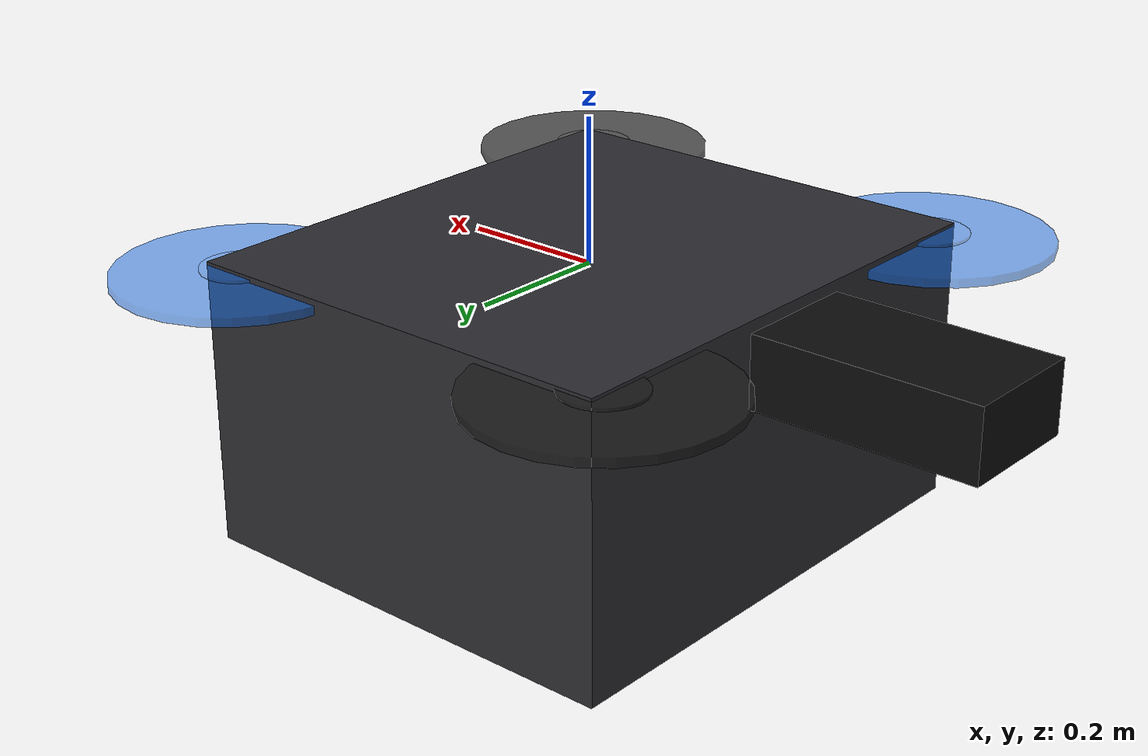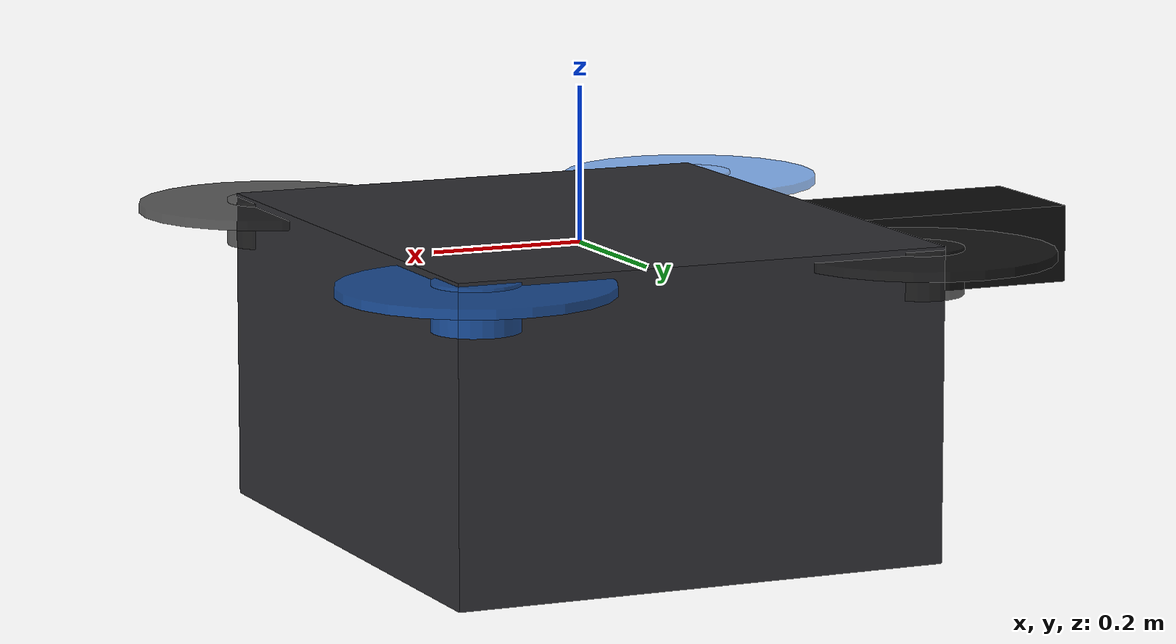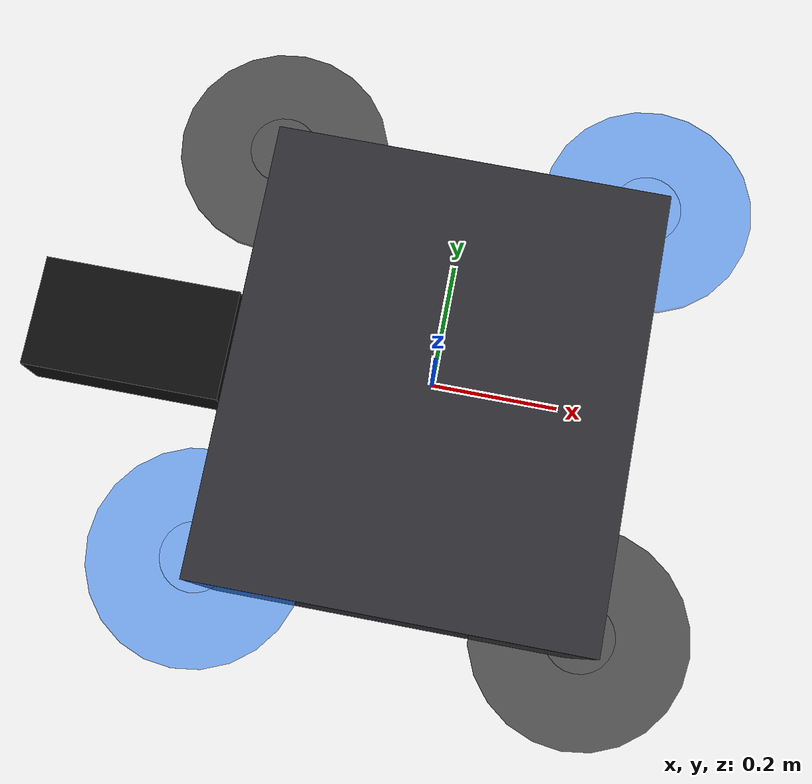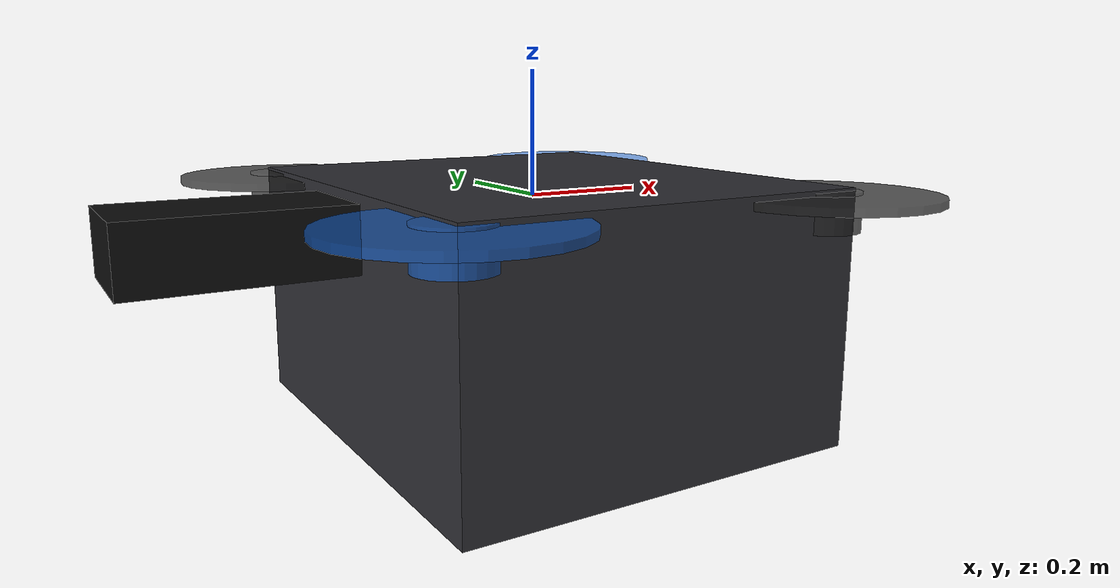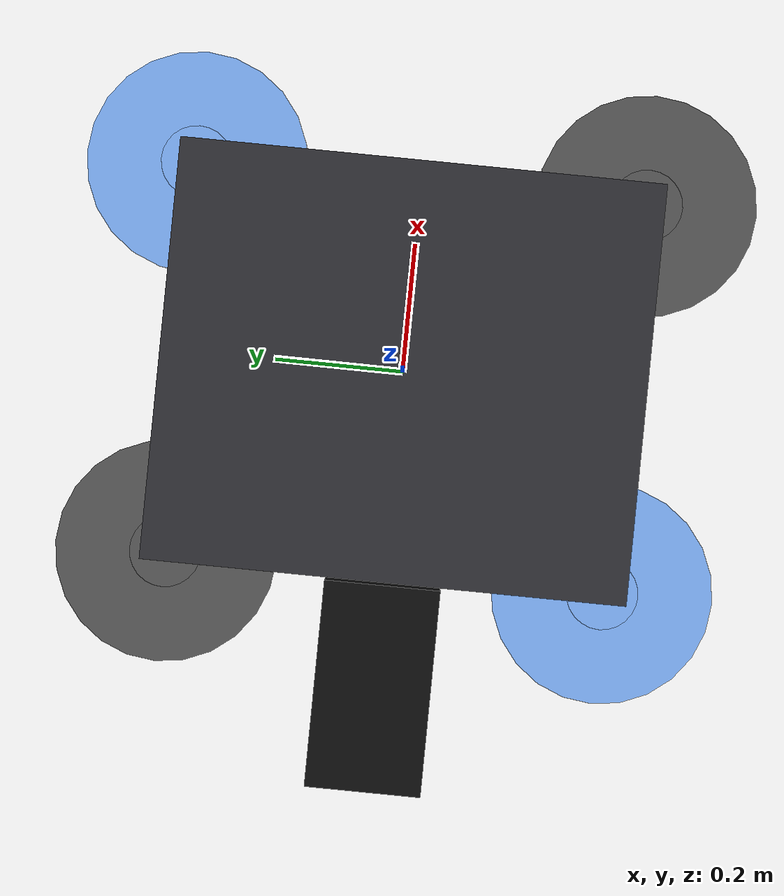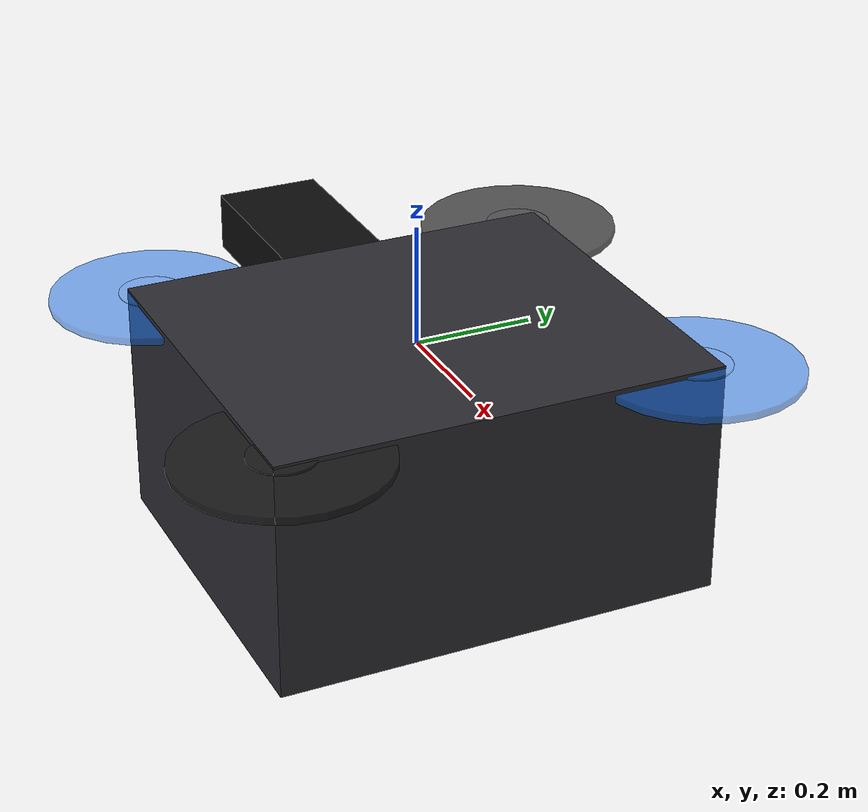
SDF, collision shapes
<?xml version='1.0' encoding='utf-8'?>
<sdf version="1.9">
  <model name="swan_uav">
    <self_collide>true</self_collide>
    <link name="base_link">
      <inertial>
        <pose>0 0 0 0 -0 0</pose>
        <mass>4.0518</mass>
        <inertia>
          <ixx>0.1105</ixx>
          <ixy>0</ixy>
          <ixz>0</ixz>
          <iyy>0.1482</iyy>
          <iyz>0</iyz>
          <izz>0.2024</izz>
        </inertia>
      </inertial>
      <!-- Collision box: covers body + landing gear feet (Z: -0.355 ~ +0.025) -->
      <collision name="base_link_collision">
        <pose>0 0 -0.17 0 0 0</pose>
        <geometry>
          <box>
            <size>0.65 0.75 0.40</size>
          </box>
        </geometry>
        <surface>
          <contact>
            <ode>
              <min_depth>0.005</min_depth>
              <max_vel>0</max_vel>
            </ode>
          </contact>
          <friction>
            <ode />
          </friction>
        </surface>
      </collision>
      <visual name="base_link_visual">
        <pose>0 0 0 0 -0 0</pose>
        <geometry>
          <mesh>
            <scale>1 1 1</scale>
            <uri>model://swan_uav/meshes/base_link.STL</uri>
          </mesh>
        </geometry>
        <material>
          <ambient>0.18 0.18 0.2 1</ambient>
          <diffuse>0.18 0.18 0.2 1</diffuse>
          <specular>0.05 0.05 0.05 1</specular>
          <emissive>0 0 0 1</emissive>
        </material>
      </visual>
      <!-- Sensors on base_link for PX4 gz_bridge compatibility -->
      <sensor name="air_pressure_sensor" type="air_pressure">
        <always_on>true</always_on>
        <update_rate>50</update_rate>
        <air_pressure>
          <pressure>
            <noise type="gaussian">
              <mean>0</mean>
              <stddev>0.01</stddev>
            </noise>
          </pressure>
        </air_pressure>
      </sensor>
      <sensor name="magnetometer_sensor" type="magnetometer">
        <always_on>true</always_on>
        <update_rate>100</update_rate>
        <magnetometer>
          <x><noise type="gaussian"><stddev>0.0001</stddev></noise></x>
          <y><noise type="gaussian"><stddev>0.0001</stddev></noise></y>
          <z><noise type="gaussian"><stddev>0.0001</stddev></noise></z>
        </magnetometer>
      </sensor>
      <sensor name="imu_sensor" type="imu">
        <always_on>true</always_on>
        <update_rate>250</update_rate>
        <imu>
          <angular_velocity>
            <x><noise type="gaussian"><mean>0</mean><stddev>0.0008726646</stddev></noise></x>
            <y><noise type="gaussian"><mean>0</mean><stddev>0.0008726646</stddev></noise></y>
            <z><noise type="gaussian"><mean>0</mean><stddev>0.0008726646</stddev></noise></z>
          </angular_velocity>
          <linear_acceleration>
            <x><noise type="gaussian"><mean>0</mean><stddev>0.00637</stddev></noise></x>
            <y><noise type="gaussian"><mean>0</mean><stddev>0.00637</stddev></noise></y>
            <z><noise type="gaussian"><mean>0</mean><stddev>0.00686</stddev></noise></z>
          </linear_acceleration>
        </imu>
      </sensor>
      <sensor name="navsat_sensor" type="navsat">
        <always_on>true</always_on>
        <update_rate>30</update_rate>
      </sensor>
    </link>

    <!-- Battery -->
    <joint name="bat_joint" type="fixed">
      <pose relative_to="base_link">-0.49118 -2.1e-05 -0.031987 0 -0 0</pose>
      <parent>base_link</parent>
      <child>bat_Link</child>
    </joint>
    <link name="bat_Link">
      <pose relative_to="bat_joint">0 0 0 0 -0 0</pose>
      <inertial>
        <pose>0 0 0 0 -0 0</pose>
        <mass>2.959</mass>
        <inertia>
          <ixx>0.00379</ixx>
          <ixy>0</ixy>
          <ixz>0</ixz>
          <iyy>0.00979</iyy>
          <iyz>0</iyz>
          <izz>0.0114</izz>
        </inertia>
      </inertial>
      <!-- Simplified collision for battery pack -->
      <collision name="bat_Link_collision">
        <pose>0 0 0 0 0 0</pose>
        <geometry>
          <box>
            <size>0.32 0.18 0.10</size>
          </box>
        </geometry>
        <max_contacts>20</max_contacts>
        <surface>
          <friction>
            <ode>
              <mu>0.8</mu>
              <mu2>0.8</mu2>
            </ode>
          </friction>
          <bounce>
            <restitution_coefficient>0.0</restitution_coefficient>
            <threshold>100000.0</threshold>
          </bounce>
          <contact>
            <ode>
              <kp>100000</kp>
              <kd>1</kd>
              <max_vel>0.01</max_vel>
              <min_depth>0.001</min_depth>
            </ode>
          </contact>
        </surface>
      </collision>
      <visual name="bat_Link_visual">
        <pose>0 0 0 0 -0 0</pose>
        <geometry>
          <mesh>
            <scale>1 1 1</scale>
            <uri>model://swan_uav/meshes/bat_Link.STL</uri>
          </mesh>
        </geometry>
        <material>
          <ambient>0.05 0.05 0.05 1</ambient>
          <diffuse>0.05 0.05 0.05 1</diffuse>
          <specular>0.05 0.05 0.05 1</specular>
          <emissive>0 0 0 1</emissive>
        </material>
      </visual>
    </link>

    <!-- Rotor 1: front-right (turningDirection: cw) -->
    <joint name="rotor_1_joint" type="revolute">
      <pose relative_to="base_link">0.29001 0.34723 0.015659 0 -0 0</pose>
      <parent>base_link</parent>
      <child>rotor_1</child>
      <axis>
        <xyz>0 0 1</xyz>
        <limit>
          <lower>-1e+16</lower>
          <upper>1e+16</upper>
        </limit>
        <dynamics>
          <spring_reference>0</spring_reference>
          <spring_stiffness>0</spring_stiffness>
        </dynamics>
      </axis>
    </joint>
    <link name="rotor_1">
      <pose relative_to="rotor_1_joint">0 0 0 0 -0 0</pose>
      <inertial>
        <pose>0.00055432 0.00024977 -0.01562 0 -0 0</pose>
        <mass>0.25</mass>
        <inertia>
          <ixx>0.000257</ixx>
          <ixy>0</ixy>
          <ixz>0</ixz>
          <iyy>0.000257</iyy>
          <iyz>0</iyz>
          <izz>0.000475</izz>
        </inertia>
      </inertial>
      <!-- Simplified collision for motor hub and propeller disk -->
      <collision name="rotor_1_motor_collision">
        <pose>0 0 -0.02 0 0 0</pose>
        <geometry>
          <cylinder>
            <radius>0.055</radius>
            <length>0.06</length>
          </cylinder>
        </geometry>
        <max_contacts>20</max_contacts>
        <surface>
          <friction>
            <ode>
              <mu>0.8</mu>
              <mu2>0.8</mu2>
            </ode>
          </friction>
          <bounce>
            <restitution_coefficient>0.0</restitution_coefficient>
            <threshold>100000.0</threshold>
          </bounce>
          <contact>
            <ode>
              <kp>100000</kp>
              <kd>1</kd>
              <max_vel>0.01</max_vel>
              <min_depth>0.001</min_depth>
            </ode>
          </contact>
        </surface>
      </collision>
      <collision name="rotor_1_prop_disk_collision">
        <pose>0 0 0 0 0 0</pose>
        <geometry>
          <cylinder>
            <radius>0.17</radius>
            <length>0.012</length>
          </cylinder>
        </geometry>
        <max_contacts>20</max_contacts>
        <surface>
          <friction>
            <ode>
              <mu>0.8</mu>
              <mu2>0.8</mu2>
            </ode>
          </friction>
          <bounce>
            <restitution_coefficient>0.0</restitution_coefficient>
            <threshold>100000.0</threshold>
          </bounce>
          <contact>
            <ode>
              <kp>100000</kp>
              <kd>1</kd>
              <max_vel>0.01</max_vel>
              <min_depth>0.001</min_depth>
            </ode>
          </contact>
        </surface>
      </collision>
      <visual name="rotor_1_visual">
        <pose>0 0 0 0 -0 0</pose>
        <geometry>
          <mesh>
            <scale>1 1 1</scale>
            <uri>model://swan_uav/meshes/rot1_Link.STL</uri>
          </mesh>
        </geometry>
        <material>
          <ambient>0.1 0.45 0.95 0.55</ambient>
          <diffuse>0.1 0.45 0.95 0.55</diffuse>
          <specular>0.05 0.05 0.05 1</specular>
          <emissive>0 0 0 1</emissive>
        </material>
        <transparency>0.45</transparency>
      </visual>
    </link>

    <!-- Rotor 2: back-left (turningDirection: cw) -->
    <joint name="rotor_2_joint" type="revolute">
      <pose relative_to="base_link">-0.30999 -0.33727 0.015659 0 -0 0</pose>
      <parent>base_link</parent>
      <child>rotor_2</child>
      <axis>
        <xyz>0 0 1</xyz>
        <limit>
          <lower>-1e+16</lower>
          <upper>1e+16</upper>
        </limit>
        <dynamics>
          <spring_reference>0</spring_reference>
          <spring_stiffness>0</spring_stiffness>
        </dynamics>
      </axis>
    </joint>
    <link name="rotor_2">
      <pose relative_to="rotor_2_joint">0 0 0 0 -0 0</pose>
      <inertial>
        <pose>0.00050774 -2.7876e-05 -0.015619 0 -0 0</pose>
        <mass>0.25</mass>
        <inertia>
          <ixx>0.000257</ixx>
          <ixy>0</ixy>
          <ixz>0</ixz>
          <iyy>0.000257</iyy>
          <iyz>0</iyz>
          <izz>0.000475</izz>
        </inertia>
      </inertial>
      <!-- Simplified collision for motor hub and propeller disk -->
      <collision name="rotor_2_motor_collision">
        <pose>0 0 -0.02 0 0 0</pose>
        <geometry>
          <cylinder>
            <radius>0.055</radius>
            <length>0.06</length>
          </cylinder>
        </geometry>
        <max_contacts>20</max_contacts>
        <surface>
          <friction>
            <ode>
              <mu>0.8</mu>
              <mu2>0.8</mu2>
            </ode>
          </friction>
          <bounce>
            <restitution_coefficient>0.0</restitution_coefficient>
            <threshold>100000.0</threshold>
          </bounce>
          <contact>
            <ode>
              <kp>100000</kp>
              <kd>1</kd>
              <max_vel>0.01</max_vel>
              <min_depth>0.001</min_depth>
            </ode>
          </contact>
        </surface>
      </collision>
      <collision name="rotor_2_prop_disk_collision">
        <pose>0 0 0 0 0 0</pose>
        <geometry>
          <cylinder>
            <radius>0.17</radius>
            <length>0.012</length>
          </cylinder>
        </geometry>
        <max_contacts>20</max_contacts>
        <surface>
          <friction>
            <ode>
              <mu>0.8</mu>
              <mu2>0.8</mu2>
            </ode>
          </friction>
          <bounce>
            <restitution_coefficient>0.0</restitution_coefficient>
            <threshold>100000.0</threshold>
          </bounce>
          <contact>
            <ode>
              <kp>100000</kp>
              <kd>1</kd>
              <max_vel>0.01</max_vel>
              <min_depth>0.001</min_depth>
            </ode>
          </contact>
        </surface>
      </collision>
      <visual name="rotor_2_visual">
        <pose>0 0 0 3.14159 -0 0</pose>
        <geometry>
          <mesh>
            <scale>1 1 1</scale>
            <uri>model://swan_uav/meshes/rot3_Link.STL</uri>
          </mesh>
        </geometry>
        <material>
          <ambient>0.1 0.45 0.95 0.55</ambient>
          <diffuse>0.1 0.45 0.95 0.55</diffuse>
          <specular>0.05 0.05 0.05 1</specular>
          <emissive>0 0 0 1</emissive>
        </material>
        <transparency>0.45</transparency>
      </visual>
    </link>

    <!-- Rotor 3: front-left (turningDirection: ccw) -->
    <joint name="rotor_3_joint" type="revolute">
      <pose relative_to="base_link">0.29001 -0.34727 0.015659 0 -0 0</pose>
      <parent>base_link</parent>
      <child>rotor_3</child>
      <axis>
        <xyz>0 0 1</xyz>
        <limit>
          <lower>-1e+16</lower>
          <upper>1e+16</upper>
        </limit>
        <dynamics>
          <spring_reference>0</spring_reference>
          <spring_stiffness>0</spring_stiffness>
        </dynamics>
      </axis>
    </joint>
    <link name="rotor_3">
      <pose relative_to="rotor_3_joint">0 0 0 0 -0 0</pose>
      <inertial>
        <pose>5.8372e-05 -0.00026068 -0.014932 0 -0 0</pose>
        <mass>0.25</mass>
        <inertia>
          <ixx>0.000257</ixx>
          <ixy>0</ixy>
          <ixz>0</ixz>
          <iyy>0.000257</iyy>
          <iyz>0</iyz>
          <izz>0.000475</izz>
        </inertia>
      </inertial>
      <!-- Simplified collision for motor hub and propeller disk -->
      <collision name="rotor_3_motor_collision">
        <pose>0 0 -0.02 0 0 0</pose>
        <geometry>
          <cylinder>
            <radius>0.055</radius>
            <length>0.06</length>
          </cylinder>
        </geometry>
        <max_contacts>20</max_contacts>
        <surface>
          <friction>
            <ode>
              <mu>0.8</mu>
              <mu2>0.8</mu2>
            </ode>
          </friction>
          <bounce>
            <restitution_coefficient>0.0</restitution_coefficient>
            <threshold>100000.0</threshold>
          </bounce>
          <contact>
            <ode>
              <kp>100000</kp>
              <kd>1</kd>
              <max_vel>0.01</max_vel>
              <min_depth>0.001</min_depth>
            </ode>
          </contact>
        </surface>
      </collision>
      <collision name="rotor_3_prop_disk_collision">
        <pose>0 0 0 0 0 0</pose>
        <geometry>
          <cylinder>
            <radius>0.17</radius>
            <length>0.012</length>
          </cylinder>
        </geometry>
        <max_contacts>20</max_contacts>
        <surface>
          <friction>
            <ode>
              <mu>0.8</mu>
              <mu2>0.8</mu2>
            </ode>
          </friction>
          <bounce>
            <restitution_coefficient>0.0</restitution_coefficient>
            <threshold>100000.0</threshold>
          </bounce>
          <contact>
            <ode>
              <kp>100000</kp>
              <kd>1</kd>
              <max_vel>0.01</max_vel>
              <min_depth>0.001</min_depth>
            </ode>
          </contact>
        </surface>
      </collision>
      <visual name="rotor_3_visual">
        <pose>0 0 0 0 -0 0</pose>
        <geometry>
          <mesh>
            <scale>1 1 1</scale>
            <uri>model://swan_uav/meshes/rot2_Link.STL</uri>
          </mesh>
        </geometry>
        <material>
          <ambient>0.15 0.15 0.15 0.75</ambient>
          <diffuse>0.15 0.15 0.15 0.75</diffuse>
          <specular>0.05 0.05 0.05 1</specular>
          <emissive>0 0 0 1</emissive>
        </material>
        <transparency>0.25</transparency>
      </visual>
    </link>

    <!-- Rotor 4: back-right (turningDirection: ccw) -->
    <joint name="rotor_4_joint" type="revolute">
      <pose relative_to="base_link">-0.30999 0.33723 0.015659 0 -0 0</pose>
      <parent>base_link</parent>
      <child>rotor_4</child>
      <axis>
        <xyz>0 0 1</xyz>
        <limit>
          <lower>-1e+16</lower>
          <upper>1e+16</upper>
        </limit>
        <dynamics>
          <spring_reference>0</spring_reference>
          <spring_stiffness>0</spring_stiffness>
        </dynamics>
      </axis>
    </joint>
    <link name="rotor_4">
      <pose relative_to="rotor_4_joint">0 0 0 0 -0 0</pose>
      <inertial>
        <pose>0.00050774 -2.7876e-05 -0.015619 0 -0 0</pose>
        <mass>0.25</mass>
        <inertia>
          <ixx>0.000257</ixx>
          <ixy>0</ixy>
          <ixz>0</ixz>
          <iyy>0.000257</iyy>
          <iyz>0</iyz>
          <izz>0.000475</izz>
        </inertia>
      </inertial>
      <!-- Simplified collision for motor hub and propeller disk -->
      <collision name="rotor_4_motor_collision">
        <pose>0 0 -0.02 0 0 0</pose>
        <geometry>
          <cylinder>
            <radius>0.055</radius>
            <length>0.06</length>
          </cylinder>
        </geometry>
        <max_contacts>20</max_contacts>
        <surface>
          <friction>
            <ode>
              <mu>0.8</mu>
              <mu2>0.8</mu2>
            </ode>
          </friction>
          <bounce>
            <restitution_coefficient>0.0</restitution_coefficient>
            <threshold>100000.0</threshold>
          </bounce>
          <contact>
            <ode>
              <kp>100000</kp>
              <kd>1</kd>
              <max_vel>0.01</max_vel>
              <min_depth>0.001</min_depth>
            </ode>
          </contact>
        </surface>
      </collision>
      <collision name="rotor_4_prop_disk_collision">
        <pose>0 0 0 0 0 0</pose>
        <geometry>
          <cylinder>
            <radius>0.17</radius>
            <length>0.012</length>
          </cylinder>
        </geometry>
        <max_contacts>20</max_contacts>
        <surface>
          <friction>
            <ode>
              <mu>0.8</mu>
              <mu2>0.8</mu2>
            </ode>
          </friction>
          <bounce>
            <restitution_coefficient>0.0</restitution_coefficient>
            <threshold>100000.0</threshold>
          </bounce>
          <contact>
            <ode>
              <kp>100000</kp>
              <kd>1</kd>
              <max_vel>0.01</max_vel>
              <min_depth>0.001</min_depth>
            </ode>
          </contact>
        </surface>
      </collision>
      <visual name="rotor_4_visual">
        <pose>0 0 0 3.14159 -0 0</pose>
        <geometry>
          <mesh>
            <scale>1 1 1</scale>
            <uri>model://swan_uav/meshes/rot4_Link.STL</uri>
          </mesh>
        </geometry>
        <material>
          <ambient>0.15 0.15 0.15 0.75</ambient>
          <diffuse>0.15 0.15 0.15 0.75</diffuse>
          <specular>0.05 0.05 0.05 1</specular>
          <emissive>0 0 0 1</emissive>
        </material>
        <transparency>0.25</transparency>
      </visual>
    </link>

    <static>false</static>

    <plugin filename="gz-sim-multicopter-motor-model-system" name="gz::sim::systems::MulticopterMotorModel">
      <jointName>rotor_1_joint</jointName>
      <linkName>rotor_1</linkName>
      <turningDirection>cw</turningDirection>
      <timeConstantUp>0.0125</timeConstantUp>
      <timeConstantDown>0.025</timeConstantDown>
      <maxRotVelocity>1300</maxRotVelocity>
      <motorConstant>4.5e-05</motorConstant>
      <momentConstant>0.06</momentConstant>
      <commandSubTopic>command/motor_speed</commandSubTopic>
      <motorNumber>0</motorNumber>
      <rotorDragCoefficient>0.000175</rotorDragCoefficient>
      <rollingMomentCoefficient>1e-06</rollingMomentCoefficient>
      <rotorVelocitySlowdownSim>10</rotorVelocitySlowdownSim>
      <motorType>velocity</motorType>
    </plugin>

    <plugin filename="gz-sim-multicopter-motor-model-system" name="gz::sim::systems::MulticopterMotorModel">
      <jointName>rotor_2_joint</jointName>
      <linkName>rotor_2</linkName>
      <turningDirection>cw</turningDirection>
      <timeConstantUp>0.0125</timeConstantUp>
      <timeConstantDown>0.025</timeConstantDown>
      <maxRotVelocity>1300</maxRotVelocity>
      <motorConstant>4.5e-05</motorConstant>
      <momentConstant>0.06</momentConstant>
      <commandSubTopic>command/motor_speed</commandSubTopic>
      <motorNumber>1</motorNumber>
      <rotorDragCoefficient>0.000175</rotorDragCoefficient>
      <rollingMomentCoefficient>1e-06</rollingMomentCoefficient>
      <rotorVelocitySlowdownSim>10</rotorVelocitySlowdownSim>
      <motorType>velocity</motorType>
    </plugin>

    <plugin filename="gz-sim-multicopter-motor-model-system" name="gz::sim::systems::MulticopterMotorModel">
      <jointName>rotor_3_joint</jointName>
      <linkName>rotor_3</linkName>
      <turningDirection>ccw</turningDirection>
      <timeConstantUp>0.0125</timeConstantUp>
      <timeConstantDown>0.025</timeConstantDown>
      <maxRotVelocity>1300</maxRotVelocity>
      <motorConstant>4.5e-05</motorConstant>
      <momentConstant>0.06</momentConstant>
      <commandSubTopic>command/motor_speed</commandSubTopic>
      <motorNumber>2</motorNumber>
      <rotorDragCoefficient>0.000175</rotorDragCoefficient>
      <rollingMomentCoefficient>1e-06</rollingMomentCoefficient>
      <rotorVelocitySlowdownSim>10</rotorVelocitySlowdownSim>
      <motorType>velocity</motorType>
    </plugin>

    <plugin filename="gz-sim-multicopter-motor-model-system" name="gz::sim::systems::MulticopterMotorModel">
      <jointName>rotor_4_joint</jointName>
      <linkName>rotor_4</linkName>
      <turningDirection>ccw</turningDirection>
      <timeConstantUp>0.0125</timeConstantUp>
      <timeConstantDown>0.025</timeConstantDown>
      <maxRotVelocity>1300</maxRotVelocity>
      <motorConstant>4.5e-05</motorConstant>
      <momentConstant>0.06</momentConstant>
      <commandSubTopic>command/motor_speed</commandSubTopic>
      <motorNumber>3</motorNumber>
      <rotorDragCoefficient>0.000175</rotorDragCoefficient>
      <rollingMomentCoefficient>1e-06</rollingMomentCoefficient>
      <rotorVelocitySlowdownSim>10</rotorVelocitySlowdownSim>
      <motorType>velocity</motorType>
    </plugin>

    <!-- Ground-truth odometry publisher -->
    <plugin filename="gz-sim-odometry-publisher-system"
            name="gz::sim::systems::OdometryPublisher">
      <dimensions>3</dimensions>
      <odom_frame>world</odom_frame>
      <robot_base_frame>base_link</robot_base_frame>
      <odom_publish_frequency>200</odom_publish_frequency>
    </plugin>

  </model>
</sdf>
